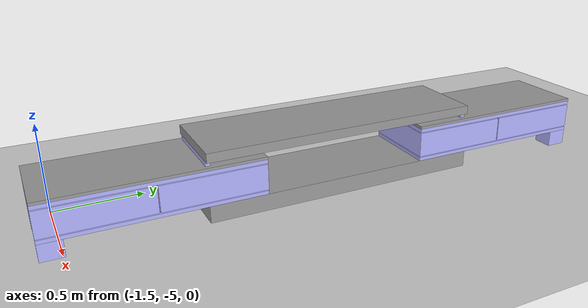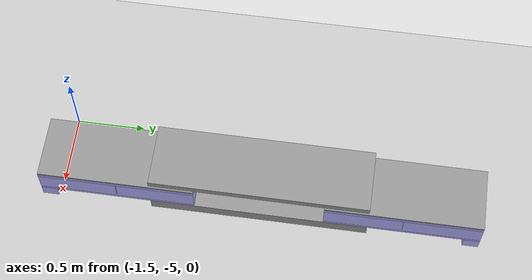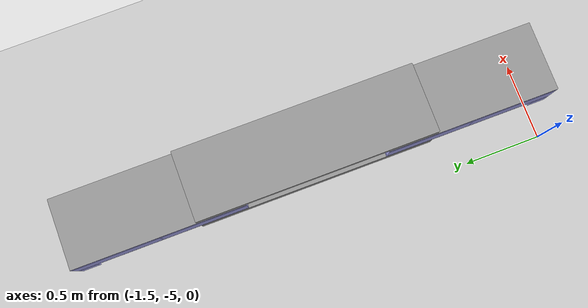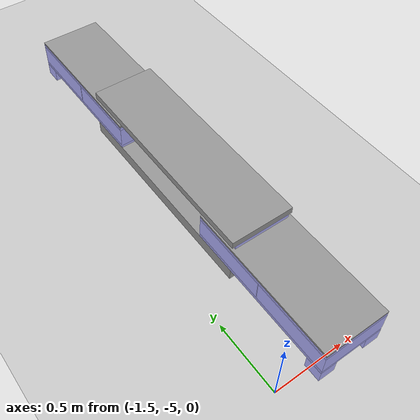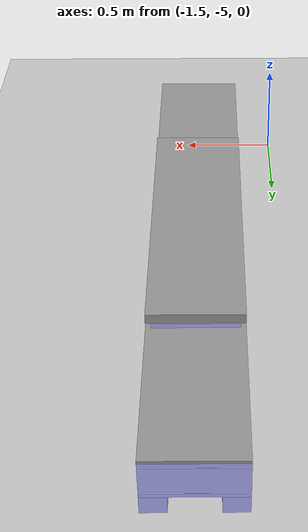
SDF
<sdf version="1.6">
 <world name="default">
  <model name="ground_plane">
   <static>1</static>
   <link name="link">
    <collision name="collision">
     <geometry><plane><normal>0 0 1</normal><size>100 100</size></plane></geometry>
     <surface><friction><ode><mu>100</mu><mu2>50</mu2></ode></friction></surface>
    </collision>
    <visual name="visual">
     <cast_shadows>0</cast_shadows>
     <geometry><plane><normal>0 0 1</normal><size>100 100</size></plane></geometry>
     <material>
      <script><uri>file://media/materials/scripts/gazebo.material</uri><name>Gazebo/Grey</name></script>
     </material>
    </visual>
   </link>
  </model>
  <model name="TVtable_1">
   <link name="link_0">
    <pose>0 0 -0.116 0 -0 0</pose>
    <visual name="visual">
     <geometry><box><size>1.545 0.45 0.091</size></box></geometry>
     <material>
      <lighting>1</lighting>
      <script><uri>file://media/materials/scripts/gazebo.material</uri><name>Gazebo/Grey</name></script>
      <ambient>0.3 0.3 0.3 1</ambient>
      <diffuse>0.7 0.7 0.7 1</diffuse>
      <specular>0.01 0.61 0.01 1</specular>
      <emissive>0 0 0 1</emissive>
      <shader type="vertex"><normal_map>__default__</normal_map></shader>
     </material>
    </visual>
    <collision name="collision">
     <geometry><box><size>1.545 0.45 0.091</size></box></geometry>
     <surface>
      <friction>
       <ode><mu>1</mu><mu2>1</mu2><fdir1>0 0 0</fdir1><slip1>0</slip1><slip2>0</slip2></ode>
       <torsional>
        <coefficient>1</coefficient>
        <patch_radius>0</patch_radius>
        <surface_radius>0</surface_radius>
        <use_patch_radius>1</use_patch_radius>
        <ode><slip>0</slip></ode>
       </torsional>
      </friction>
      <bounce><restitution_coefficient>0</restitution_coefficient><threshold>1e+06</threshold></bounce>
      <contact>
       <collide_without_contact>0</collide_without_contact>
       <collide_without_contact_bitmask>1</collide_without_contact_bitmask>
       <collide_bitmask>1</collide_bitmask>
       <ode>
        <soft_cfm>0</soft_cfm>
        <soft_erp>0.2</soft_erp>
        <kp>1e+13</kp>
        <kd>1</kd>
        <max_vel>0.01</max_vel>
        <min_depth>0</min_depth>
       </ode>
       <bullet>
        <split_impulse>1</split_impulse>
        <split_impulse_penetration_threshold>-0.01</split_impulse_penetration_threshold>
        <soft_cfm>0</soft_cfm>
        <soft_erp>0.2</soft_erp>
        <kp>1e+13</kp>
        <kd>1</kd>
       </bullet>
      </contact>
     </surface>
    </collision>
    <inertial>
     <inertia><ixx>1</ixx><ixy>0</ixy><ixz>0</ixz><iyy>1</iyy><iyz>0</iyz><izz>1</izz></inertia>
     <mass>1</mass>
    </inertial>
   </link>
   <link name="link_1_0">
    <pose>0.76 0 0.147 0 -0 0</pose>
    <visual name="visual">
     <geometry><box><size>0.025 0.4 0.025</size></box></geometry>
     <material>
      <lighting>1</lighting>
      <script><uri>file://media/materials/scripts/gazebo.material</uri><name>Gazebo/Grey</name></script>
      <ambient>0.3 0.3 0.3 1</ambient>
      <diffuse>0.7 0.7 1 1</diffuse>
      <specular>0.01 0.01 0.01 1</specular>
      <emissive>0 0 0 1</emissive>
      <shader type="vertex"><normal_map>__default__</normal_map></shader>
     </material>
    </visual>
    <collision name="collision">
     <geometry><box><size>0.025 0.4 0.025</size></box></geometry>
     <surface>
      <friction>
       <ode><mu>1</mu><mu2>1</mu2><fdir1>0 0 0</fdir1><slip1>0</slip1><slip2>0</slip2></ode>
       <torsional>
        <coefficient>1</coefficient>
        <patch_radius>0</patch_radius>
        <surface_radius>0</surface_radius>
        <use_patch_radius>1</use_patch_radius>
        <ode><slip>0</slip></ode>
       </torsional>
      </friction>
      <bounce><restitution_coefficient>0</restitution_coefficient><threshold>1e+06</threshold></bounce>
      <contact>
       <collide_without_contact>0</collide_without_contact>
       <collide_without_contact_bitmask>1</collide_without_contact_bitmask>
       <collide_bitmask>1</collide_bitmask>
       <ode>
        <soft_cfm>0</soft_cfm>
        <soft_erp>0.2</soft_erp>
        <kp>1e+13</kp>
        <kd>1</kd>
        <max_vel>0.01</max_vel>
        <min_depth>0</min_depth>
       </ode>
       <bullet>
        <split_impulse>1</split_impulse>
        <split_impulse_penetration_threshold>-0.01</split_impulse_penetration_threshold>
        <soft_cfm>0</soft_cfm>
        <soft_erp>0.2</soft_erp>
        <kp>1e+13</kp>
        <kd>1</kd>
       </bullet>
      </contact>
     </surface>
    </collision>
    <inertial>
     <inertia><ixx>1</ixx><ixy>0</ixy><ixz>0</ixz><iyy>1</iyy><iyz>0</iyz><izz>1</izz></inertia>
     <mass>1</mass>
    </inertial>
   </link>
   <link name="link_1_0_clone">
    <pose>-0.76 0 0.147 0 -0 0</pose>
    <visual name="visual_0">
     <geometry><box><size>0.025 0.4 0.025</size></box></geometry>
     <material>
      <lighting>1</lighting>
      <script><uri>file://media/materials/scripts/gazebo.material</uri><name>Gazebo/Grey</name></script>
      <ambient>0.3 0.3 0.3 1</ambient>
      <diffuse>0.7 0.7 1 1</diffuse>
      <specular>0.01 0.01 0.01 1</specular>
      <emissive>0 0 0 1</emissive>
      <shader type="vertex"><normal_map>__default__</normal_map></shader>
     </material>
    </visual>
    <collision name="collision">
     <geometry><box><size>0.025 0.4 0.025</size></box></geometry>
     <surface>
      <friction>
       <ode><mu>1</mu><mu2>1</mu2><fdir1>0 0 0</fdir1><slip1>0</slip1><slip2>0</slip2></ode>
       <torsional>
        <coefficient>1</coefficient>
        <patch_radius>0</patch_radius>
        <surface_radius>0</surface_radius>
        <use_patch_radius>1</use_patch_radius>
        <ode><slip>0</slip></ode>
       </torsional>
      </friction>
      <bounce><restitution_coefficient>0</restitution_coefficient><threshold>1e+06</threshold></bounce>
      <contact>
       <collide_without_contact>0</collide_without_contact>
       <collide_without_contact_bitmask>1</collide_without_contact_bitmask>
       <collide_bitmask>1</collide_bitmask>
       <ode>
        <soft_cfm>0</soft_cfm>
        <soft_erp>0.2</soft_erp>
        <kp>1e+13</kp>
        <kd>1</kd>
        <max_vel>0.01</max_vel>
        <min_depth>0</min_depth>
       </ode>
       <bullet>
        <split_impulse>1</split_impulse>
        <split_impulse_penetration_threshold>-0.01</split_impulse_penetration_threshold>
        <soft_cfm>0</soft_cfm>
        <soft_erp>0.2</soft_erp>
        <kp>1e+13</kp>
        <kd>1</kd>
       </bullet>
      </contact>
     </surface>
    </collision>
    <inertial>
     <inertia><ixx>1</ixx><ixy>0</ixy><ixz>0</ixz><iyy>1</iyy><iyz>0</iyz><izz>1</izz></inertia>
     <mass>1</mass>
    </inertial>
   </link>
   <link name="link_2">
    <pose>-1.0125 0 -0.0605 0 -0 0</pose>
    <visual name="visual">
     <geometry><box><size>1.105 0.45 0.02</size></box></geometry>
     <material>
      <lighting>1</lighting>
      <script><uri>file://media/materials/scripts/gazebo.material</uri><name>Gazebo/Grey</name></script>
      <ambient>0.3 0.3 0.3 1</ambient>
      <diffuse>0.7 0.7 1 1</diffuse>
      <specular>0.01 0.01 0.01 1</specular>
      <emissive>0 0 0 1</emissive>
      <shader type="vertex"><normal_map>__default__</normal_map></shader>
     </material>
    </visual>
    <collision name="collision">
     <geometry><box><size>1.105 0.45 0.02</size></box></geometry>
     <surface>
      <friction>
       <ode><mu>1</mu><mu2>1</mu2><fdir1>0 0 0</fdir1><slip1>0</slip1><slip2>0</slip2></ode>
       <torsional>
        <coefficient>1</coefficient>
        <patch_radius>0</patch_radius>
        <surface_radius>0</surface_radius>
        <use_patch_radius>1</use_patch_radius>
        <ode><slip>0</slip></ode>
       </torsional>
      </friction>
      <bounce><restitution_coefficient>0</restitution_coefficient><threshold>1e+06</threshold></bounce>
      <contact>
       <collide_without_contact>0</collide_without_contact>
       <collide_without_contact_bitmask>1</collide_without_contact_bitmask>
       <collide_bitmask>1</collide_bitmask>
       <ode>
        <soft_cfm>0</soft_cfm>
        <soft_erp>0.2</soft_erp>
        <kp>1e+13</kp>
        <kd>1</kd>
        <max_vel>0.01</max_vel>
        <min_depth>0</min_depth>
       </ode>
       <bullet>
        <split_impulse>1</split_impulse>
        <split_impulse_penetration_threshold>-0.01</split_impulse_penetration_threshold>
        <soft_cfm>0</soft_cfm>
        <soft_erp>0.2</soft_erp>
        <kp>1e+13</kp>
        <kd>1</kd>
       </bullet>
      </contact>
     </surface>
    </collision>
    <inertial>
     <inertia><ixx>1</ixx><ixy>0</ixy><ixz>0</ixz><iyy>1</iyy><iyz>0</iyz><izz>1</izz></inertia>
     <mass>1</mass>
    </inertial>
   </link>
   <link name="link_2_0">
    <pose>0 0 0.1845 0 -0 0</pose>
    <visual name="visual">
     <geometry><box><size>1.545 0.45 0.05</size></box></geometry>
     <material>
      <lighting>1</lighting>
      <script><uri>file://media/materials/scripts/gazebo.material</uri><name>Gazebo/Grey</name></script>
      <ambient>0.3 0.3 0.3 1</ambient>
      <diffuse>0.7 0.7 0.7 1</diffuse>
      <specular>0.01 0.61 0.01 1</specular>
      <emissive>0 0 0 1</emissive>
      <shader type="vertex"><normal_map>__default__</normal_map></shader>
     </material>
    </visual>
    <collision name="collision">
     <geometry><box><size>1.545 0.45 0.05</size></box></geometry>
     <surface>
      <friction>
       <ode><mu>1</mu><mu2>1</mu2><fdir1>0 0 0</fdir1><slip1>0</slip1><slip2>0</slip2></ode>
       <torsional>
        <coefficient>1</coefficient>
        <patch_radius>0</patch_radius>
        <surface_radius>0</surface_radius>
        <use_patch_radius>1</use_patch_radius>
        <ode><slip>0</slip></ode>
       </torsional>
      </friction>
      <bounce><restitution_coefficient>0</restitution_coefficient><threshold>1e+06</threshold></bounce>
      <contact>
       <collide_without_contact>0</collide_without_contact>
       <collide_without_contact_bitmask>1</collide_without_contact_bitmask>
       <collide_bitmask>1</collide_bitmask>
       <ode>
        <soft_cfm>0</soft_cfm>
        <soft_erp>0.2</soft_erp>
        <kp>1e+13</kp>
        <kd>1</kd>
        <max_vel>0.01</max_vel>
        <min_depth>0</min_depth>
       </ode>
       <bullet>
        <split_impulse>1</split_impulse>
        <split_impulse_penetration_threshold>-0.01</split_impulse_penetration_threshold>
        <soft_cfm>0</soft_cfm>
        <soft_erp>0.2</soft_erp>
        <kp>1e+13</kp>
        <kd>1</kd>
       </bullet>
      </contact>
     </surface>
    </collision>
    <inertial>
     <inertia><ixx>1</ixx><ixy>0</ixy><ixz>0</ixz><iyy>1</iyy><iyz>0</iyz><izz>1</izz></inertia>
     <mass>1</mass>
    </inertial>
   </link>
   <link name="link_2_clone">
    <pose>1.0125 0 -0.0605 0 -0 0</pose>
    <visual name="visual">
     <geometry><box><size>1.105 0.45 0.02</size></box></geometry>
     <material>
      <lighting>1</lighting>
      <script><uri>file://media/materials/scripts/gazebo.material</uri><name>Gazebo/Grey</name></script>
      <ambient>0.3 0.3 0.3 1</ambient>
      <diffuse>0.7 0.7 1 1</diffuse>
      <specular>0.01 0.01 0.01 1</specular>
      <emissive>0 0 0 1</emissive>
      <shader type="vertex"><normal_map>__default__</normal_map></shader>
     </material>
    </visual>
    <collision name="collision">
     <geometry><box><size>1.105 0.45 0.02</size></box></geometry>
     <surface>
      <friction>
       <ode><mu>1</mu><mu2>1</mu2><fdir1>0 0 0</fdir1><slip1>0</slip1><slip2>0</slip2></ode>
       <torsional>
        <coefficient>1</coefficient>
        <patch_radius>0</patch_radius>
        <surface_radius>0</surface_radius>
        <use_patch_radius>1</use_patch_radius>
        <ode><slip>0</slip></ode>
       </torsional>
      </friction>
      <bounce><restitution_coefficient>0</restitution_coefficient><threshold>1e+06</threshold></bounce>
      <contact>
       <collide_without_contact>0</collide_without_contact>
       <collide_without_contact_bitmask>1</collide_without_contact_bitmask>
       <collide_bitmask>1</collide_bitmask>
       <ode>
        <soft_cfm>0</soft_cfm>
        <soft_erp>0.2</soft_erp>
        <kp>1e+13</kp>
        <kd>1</kd>
        <max_vel>0.01</max_vel>
        <min_depth>0</min_depth>
       </ode>
       <bullet>
        <split_impulse>1</split_impulse>
        <split_impulse_penetration_threshold>-0.01</split_impulse_penetration_threshold>
        <soft_cfm>0</soft_cfm>
        <soft_erp>0.2</soft_erp>
        <kp>1e+13</kp>
        <kd>1</kd>
       </bullet>
      </contact>
     </surface>
    </collision>
    <inertial>
     <inertia><ixx>1</ixx><ixy>0</ixy><ixz>0</ixz><iyy>1</iyy><iyz>0</iyz><izz>1</izz></inertia>
     <mass>1</mass>
    </inertial>
   </link>
   <link name="link_5">
    <pose>-1.29 0 0.0245 0 -0 0</pose>
    <visual name="visual">
     <geometry><box><size>0.55 0.45 0.14</size></box></geometry>
     <material>
      <lighting>1</lighting>
      <script><uri>file://media/materials/scripts/gazebo.material</uri><name>Gazebo/Grey</name></script>
      <ambient>0.3 0.3 0.3 1</ambient>
      <diffuse>0.7 0.7 1 1</diffuse>
      <specular>0.01 0.01 0.01 1</specular>
      <emissive>0 0 0 1</emissive>
      <shader type="vertex"><normal_map>__default__</normal_map></shader>
     </material>
    </visual>
    <collision name="collision">
     <geometry><box><size>0.55 0.45 0.14</size></box></geometry>
     <surface>
      <friction>
       <ode><mu>1</mu><mu2>1</mu2><fdir1>0 0 0</fdir1><slip1>0</slip1><slip2>0</slip2></ode>
       <torsional>
        <coefficient>1</coefficient>
        <patch_radius>0</patch_radius>
        <surface_radius>0</surface_radius>
        <use_patch_radius>1</use_patch_radius>
        <ode><slip>0</slip></ode>
       </torsional>
      </friction>
      <bounce><restitution_coefficient>0</restitution_coefficient><threshold>1e+06</threshold></bounce>
      <contact>
       <collide_without_contact>0</collide_without_contact>
       <collide_without_contact_bitmask>1</collide_without_contact_bitmask>
       <collide_bitmask>1</collide_bitmask>
       <ode>
        <soft_cfm>0</soft_cfm>
        <soft_erp>0.2</soft_erp>
        <kp>1e+13</kp>
        <kd>1</kd>
        <max_vel>0.01</max_vel>
        <min_depth>0</min_depth>
       </ode>
       <bullet>
        <split_impulse>1</split_impulse>
        <split_impulse_penetration_threshold>-0.01</split_impulse_penetration_threshold>
        <soft_cfm>0</soft_cfm>
        <soft_erp>0.2</soft_erp>
        <kp>1e+13</kp>
        <kd>1</kd>
       </bullet>
      </contact>
     </surface>
    </collision>
    <inertial>
     <inertia><ixx>1</ixx><ixy>0</ixy><ixz>0</ixz><iyy>1</iyy><iyz>0</iyz><izz>1</izz></inertia>
     <mass>1</mass>
    </inertial>
   </link>
   <link name="link_5_clone">
    <pose>-0.735 0 0.0245 0 -0 0</pose>
    <visual name="visual">
     <geometry><box><size>0.55 0.45 0.14</size></box></geometry>
     <material>
      <lighting>1</lighting>
      <script><uri>file://media/materials/scripts/gazebo.material</uri><name>Gazebo/Grey</name></script>
      <ambient>0.3 0.3 0.3 1</ambient>
      <diffuse>0.7 0.7 1 1</diffuse>
      <specular>0.01 0.01 0.01 1</specular>
      <emissive>0 0 0 1</emissive>
      <shader type="vertex"><normal_map>__default__</normal_map></shader>
     </material>
    </visual>
    <collision name="collision">
     <geometry><box><size>0.55 0.45 0.14</size></box></geometry>
     <surface>
      <friction>
       <ode><mu>1</mu><mu2>1</mu2><fdir1>0 0 0</fdir1><slip1>0</slip1><slip2>0</slip2></ode>
       <torsional>
        <coefficient>1</coefficient>
        <patch_radius>0</patch_radius>
        <surface_radius>0</surface_radius>
        <use_patch_radius>1</use_patch_radius>
        <ode><slip>0</slip></ode>
       </torsional>
      </friction>
      <bounce><restitution_coefficient>0</restitution_coefficient><threshold>1e+06</threshold></bounce>
      <contact>
       <collide_without_contact>0</collide_without_contact>
       <collide_without_contact_bitmask>1</collide_without_contact_bitmask>
       <collide_bitmask>1</collide_bitmask>
       <ode>
        <soft_cfm>0</soft_cfm>
        <soft_erp>0.2</soft_erp>
        <kp>1e+13</kp>
        <kd>1</kd>
        <max_vel>0.01</max_vel>
        <min_depth>0</min_depth>
       </ode>
       <bullet>
        <split_impulse>1</split_impulse>
        <split_impulse_penetration_threshold>-0.01</split_impulse_penetration_threshold>
        <soft_cfm>0</soft_cfm>
        <soft_erp>0.2</soft_erp>
        <kp>1e+13</kp>
        <kd>1</kd>
       </bullet>
      </contact>
     </surface>
    </collision>
    <inertial>
     <inertia><ixx>1</ixx><ixy>0</ixy><ixz>0</ixz><iyy>1</iyy><iyz>0</iyz><izz>1</izz></inertia>
     <mass>1</mass>
    </inertial>
   </link>
   <link name="link_5_clone_1">
    <pose>0.735 0 0.0245 0 -0 0</pose>
    <visual name="visual">
     <geometry><box><size>0.55 0.45 0.14</size></box></geometry>
     <material>
      <lighting>1</lighting>
      <script><uri>file://media/materials/scripts/gazebo.material</uri><name>Gazebo/Grey</name></script>
      <ambient>0.3 0.3 0.3 1</ambient>
      <diffuse>0.7 0.7 1 1</diffuse>
      <specular>0.01 0.01 0.01 1</specular>
      <emissive>0 0 0 1</emissive>
      <shader type="vertex"><normal_map>__default__</normal_map></shader>
     </material>
    </visual>
    <collision name="collision">
     <geometry><box><size>0.55 0.45 0.14</size></box></geometry>
     <surface>
      <friction>
       <ode><mu>1</mu><mu2>1</mu2><fdir1>0 0 0</fdir1><slip1>0</slip1><slip2>0</slip2></ode>
       <torsional>
        <coefficient>1</coefficient>
        <patch_radius>0</patch_radius>
        <surface_radius>0</surface_radius>
        <use_patch_radius>1</use_patch_radius>
        <ode><slip>0</slip></ode>
       </torsional>
      </friction>
      <bounce><restitution_coefficient>0</restitution_coefficient><threshold>1e+06</threshold></bounce>
      <contact>
       <collide_without_contact>0</collide_without_contact>
       <collide_without_contact_bitmask>1</collide_without_contact_bitmask>
       <collide_bitmask>1</collide_bitmask>
       <ode>
        <soft_cfm>0</soft_cfm>
        <soft_erp>0.2</soft_erp>
        <kp>1e+13</kp>
        <kd>1</kd>
        <max_vel>0.01</max_vel>
        <min_depth>0</min_depth>
       </ode>
       <bullet>
        <split_impulse>1</split_impulse>
        <split_impulse_penetration_threshold>-0.01</split_impulse_penetration_threshold>
        <soft_cfm>0</soft_cfm>
        <soft_erp>0.2</soft_erp>
        <kp>1e+13</kp>
        <kd>1</kd>
       </bullet>
      </contact>
     </surface>
    </collision>
    <inertial>
     <inertia><ixx>1</ixx><ixy>0</ixy><ixz>0</ixz><iyy>1</iyy><iyz>0</iyz><izz>1</izz></inertia>
     <mass>1</mass>
    </inertial>
   </link>
   <link name="link_5_clone_2">
    <pose>1.29 0 0.0245 0 -0 0</pose>
    <visual name="visual">
     <geometry><box><size>0.55 0.45 0.14</size></box></geometry>
     <material>
      <lighting>1</lighting>
      <script><uri>file://media/materials/scripts/gazebo.material</uri><name>Gazebo/Grey</name></script>
      <ambient>0.3 0.3 0.3 1</ambient>
      <diffuse>0.7 0.7 1 1</diffuse>
      <specular>0.01 0.01 0.01 1</specular>
      <emissive>0 0 0 1</emissive>
      <shader type="vertex"><normal_map>__default__</normal_map></shader>
     </material>
    </visual>
    <collision name="collision">
     <geometry><box><size>0.55 0.45 0.14</size></box></geometry>
     <surface>
      <friction>
       <ode><mu>1</mu><mu2>1</mu2><fdir1>0 0 0</fdir1><slip1>0</slip1><slip2>0</slip2></ode>
       <torsional>
        <coefficient>1</coefficient>
        <patch_radius>0</patch_radius>
        <surface_radius>0</surface_radius>
        <use_patch_radius>1</use_patch_radius>
        <ode><slip>0</slip></ode>
       </torsional>
      </friction>
      <bounce><restitution_coefficient>0</restitution_coefficient><threshold>1e+06</threshold></bounce>
      <contact>
       <collide_without_contact>0</collide_without_contact>
       <collide_without_contact_bitmask>1</collide_without_contact_bitmask>
       <collide_bitmask>1</collide_bitmask>
       <ode>
        <soft_cfm>0</soft_cfm>
        <soft_erp>0.2</soft_erp>
        <kp>1e+13</kp>
        <kd>1</kd>
        <max_vel>0.01</max_vel>
        <min_depth>0</min_depth>
       </ode>
       <bullet>
        <split_impulse>1</split_impulse>
        <split_impulse_penetration_threshold>-0.01</split_impulse_penetration_threshold>
        <soft_cfm>0</soft_cfm>
        <soft_erp>0.2</soft_erp>
        <kp>1e+13</kp>
        <kd>1</kd>
       </bullet>
      </contact>
     </surface>
    </collision>
    <inertial>
     <inertia><ixx>1</ixx><ixy>0</ixy><ixz>0</ixz><iyy>1</iyy><iyz>0</iyz><izz>1</izz></inertia>
     <mass>1</mass>
    </inertial>
   </link>
   <link name="link_6">
    <pose>-1.0125 0 0.1095 0 -0 0</pose>
    <visual name="visual">
     <geometry><box><size>1.105 0.45 0.02</size></box></geometry>
     <material>
      <lighting>1</lighting>
      <script><uri>file://media/materials/scripts/gazebo.material</uri><name>Gazebo/Grey</name></script>
      <ambient>0.3 0.3 0.3 1</ambient>
      <diffuse>0.7 0.7 1 1</diffuse>
      <specular>0.01 0.01 0.01 1</specular>
      <emissive>0 0 0 1</emissive>
      <shader type="vertex"><normal_map>__default__</normal_map></shader>
     </material>
    </visual>
    <collision name="collision">
     <geometry><box><size>1.105 0.45 0.02</size></box></geometry>
     <surface>
      <friction>
       <ode><mu>1</mu><mu2>1</mu2><fdir1>0 0 0</fdir1><slip1>0</slip1><slip2>0</slip2></ode>
       <torsional>
        <coefficient>1</coefficient>
        <patch_radius>0</patch_radius>
        <surface_radius>0</surface_radius>
        <use_patch_radius>1</use_patch_radius>
        <ode><slip>0</slip></ode>
       </torsional>
      </friction>
      <bounce><restitution_coefficient>0</restitution_coefficient><threshold>1e+06</threshold></bounce>
      <contact>
       <collide_without_contact>0</collide_without_contact>
       <collide_without_contact_bitmask>1</collide_without_contact_bitmask>
       <collide_bitmask>1</collide_bitmask>
       <ode>
        <soft_cfm>0</soft_cfm>
        <soft_erp>0.2</soft_erp>
        <kp>1e+13</kp>
        <kd>1</kd>
        <max_vel>0.01</max_vel>
        <min_depth>0</min_depth>
       </ode>
       <bullet>
        <split_impulse>1</split_impulse>
        <split_impulse_penetration_threshold>-0.01</split_impulse_penetration_threshold>
        <soft_cfm>0</soft_cfm>
        <soft_erp>0.2</soft_erp>
        <kp>1e+13</kp>
        <kd>1</kd>
       </bullet>
      </contact>
     </surface>
    </collision>
    <inertial>
     <inertia><ixx>1</ixx><ixy>0</ixy><ixz>0</ixz><iyy>1</iyy><iyz>0</iyz><izz>1</izz></inertia>
     <mass>1</mass>
    </inertial>
   </link>
   <link name="link_6_clone">
    <pose>1.0125 0 0.1095 0 -0 0</pose>
    <visual name="visual">
     <geometry><box><size>1.105 0.45 0.02</size></box></geometry>
     <material>
      <lighting>1</lighting>
      <script><uri>file://media/materials/scripts/gazebo.material</uri><name>Gazebo/Grey</name></script>
      <ambient>0.3 0.3 0.3 1</ambient>
      <diffuse>0.7 0.7 1 1</diffuse>
      <specular>0.01 0.01 0.01 1</specular>
      <emissive>0 0 0 1</emissive>
      <shader type="vertex"><normal_map>__default__</normal_map></shader>
     </material>
    </visual>
    <collision name="collision">
     <geometry><box><size>1.105 0.45 0.02</size></box></geometry>
     <surface>
      <friction>
       <ode><mu>1</mu><mu2>1</mu2><fdir1>0 0 0</fdir1><slip1>0</slip1><slip2>0</slip2></ode>
       <torsional>
        <coefficient>1</coefficient>
        <patch_radius>0</patch_radius>
        <surface_radius>0</surface_radius>
        <use_patch_radius>1</use_patch_radius>
        <ode><slip>0</slip></ode>
       </torsional>
      </friction>
      <bounce><restitution_coefficient>0</restitution_coefficient><threshold>1e+06</threshold></bounce>
      <contact>
       <collide_without_contact>0</collide_without_contact>
       <collide_without_contact_bitmask>1</collide_without_contact_bitmask>
       <collide_bitmask>1</collide_bitmask>
       <ode>
        <soft_cfm>0</soft_cfm>
        <soft_erp>0.2</soft_erp>
        <kp>1e+13</kp>
        <kd>1</kd>
        <max_vel>0.01</max_vel>
        <min_depth>0</min_depth>
       </ode>
       <bullet>
        <split_impulse>1</split_impulse>
        <split_impulse_penetration_threshold>-0.01</split_impulse_penetration_threshold>
        <soft_cfm>0</soft_cfm>
        <soft_erp>0.2</soft_erp>
        <kp>1e+13</kp>
        <kd>1</kd>
       </bullet>
      </contact>
     </surface>
    </collision>
    <inertial>
     <inertia><ixx>1</ixx><ixy>0</ixy><ixz>0</ixz><iyy>1</iyy><iyz>0</iyz><izz>1</izz></inertia>
     <mass>1</mass>
    </inertial>
   </link>
   <link name="link_7">
    <pose>1.0125 0 0.127 0 -0 0</pose>
    <visual name="visual">
     <geometry><box><size>1.105 0.45 0.015</size></box></geometry>
     <material>
      <lighting>1</lighting>
      <script><uri>file://media/materials/scripts/gazebo.material</uri><name>Gazebo/Grey</name></script>
      <ambient>0.3 0.3 0.3 1</ambient>
      <diffuse>0.7 0.7 0.7 1</diffuse>
      <specular>0.01 0.61 0.01 1</specular>
      <emissive>0 0 0 1</emissive>
      <shader type="vertex"><normal_map>__default__</normal_map></shader>
     </material>
    </visual>
    <collision name="collision">
     <geometry><box><size>1.105 0.45 0.015</size></box></geometry>
     <surface>
      <friction>
       <ode><mu>1</mu><mu2>1</mu2><fdir1>0 0 0</fdir1><slip1>0</slip1><slip2>0</slip2></ode>
       <torsional>
        <coefficient>1</coefficient>
        <patch_radius>0</patch_radius>
        <surface_radius>0</surface_radius>
        <use_patch_radius>1</use_patch_radius>
        <ode><slip>0</slip></ode>
       </torsional>
      </friction>
      <bounce><restitution_coefficient>0</restitution_coefficient><threshold>1e+06</threshold></bounce>
      <contact>
       <collide_without_contact>0</collide_without_contact>
       <collide_without_contact_bitmask>1</collide_without_contact_bitmask>
       <collide_bitmask>1</collide_bitmask>
       <ode>
        <soft_cfm>0</soft_cfm>
        <soft_erp>0.2</soft_erp>
        <kp>1e+13</kp>
        <kd>1</kd>
        <max_vel>0.01</max_vel>
        <min_depth>0</min_depth>
       </ode>
       <bullet>
        <split_impulse>1</split_impulse>
        <split_impulse_penetration_threshold>-0.01</split_impulse_penetration_threshold>
        <soft_cfm>0</soft_cfm>
        <soft_erp>0.2</soft_erp>
        <kp>1e+13</kp>
        <kd>1</kd>
       </bullet>
      </contact>
     </surface>
    </collision>
    <inertial>
     <inertia><ixx>1</ixx><ixy>0</ixy><ixz>0</ixz><iyy>1</iyy><iyz>0</iyz><izz>1</izz></inertia>
     <mass>1</mass>
    </inertial>
   </link>
   <link name="link_7_clone">
    <pose>-1.0125 0 0.127 0 -0 0</pose>
    <visual name="visual">
     <geometry><box><size>1.105 0.45 0.015</size></box></geometry>
     <material>
      <lighting>1</lighting>
      <script><uri>file://media/materials/scripts/gazebo.material</uri><name>Gazebo/Grey</name></script>
      <ambient>0.3 0.3 0.3 1</ambient>
      <diffuse>0.7 0.7 0.7 1</diffuse>
      <specular>0.01 0.61 0.01 1</specular>
      <emissive>0 0 0 1</emissive>
      <shader type="vertex"><normal_map>__default__</normal_map></shader>
     </material>
    </visual>
    <collision name="collision">
     <geometry><box><size>1.105 0.45 0.015</size></box></geometry>
     <surface>
      <friction>
       <ode><mu>1</mu><mu2>1</mu2><fdir1>0 0 0</fdir1><slip1>0</slip1><slip2>0</slip2></ode>
       <torsional>
        <coefficient>1</coefficient>
        <patch_radius>0</patch_radius>
        <surface_radius>0</surface_radius>
        <use_patch_radius>1</use_patch_radius>
        <ode><slip>0</slip></ode>
       </torsional>
      </friction>
      <bounce><restitution_coefficient>0</restitution_coefficient><threshold>1e+06</threshold></bounce>
      <contact>
       <collide_without_contact>0</collide_without_contact>
       <collide_without_contact_bitmask>1</collide_without_contact_bitmask>
       <collide_bitmask>1</collide_bitmask>
       <ode>
        <soft_cfm>0</soft_cfm>
        <soft_erp>0.2</soft_erp>
        <kp>1e+13</kp>
        <kd>1</kd>
        <max_vel>0.01</max_vel>
        <min_depth>0</min_depth>
       </ode>
       <bullet>
        <split_impulse>1</split_impulse>
        <split_impulse_penetration_threshold>-0.01</split_impulse_penetration_threshold>
        <soft_cfm>0</soft_cfm>
        <soft_erp>0.2</soft_erp>
        <kp>1e+13</kp>
        <kd>1</kd>
       </bullet>
      </contact>
     </surface>
    </collision>
    <inertial>
     <inertia><ixx>1</ixx><ixy>0</ixy><ixz>0</ixz><iyy>1</iyy><iyz>0</iyz><izz>1</izz></inertia>
     <mass>1</mass>
    </inertial>
   </link>
   <link name="link_8">
    <pose>1.5075 0.1675 -0.116 0 -0 0</pose>
    <visual name="visual">
     <geometry><box><size>0.115 0.115 0.091</size></box></geometry>
     <material>
      <lighting>1</lighting>
      <script><uri>file://media/materials/scripts/gazebo.material</uri><name>Gazebo/Grey</name></script>
      <ambient>0.3 0.3 0.3 1</ambient>
      <diffuse>0.7 0.7 1 1</diffuse>
      <specular>0.01 0.01 0.01 1</specular>
      <emissive>0 0 0 1</emissive>
      <shader type="vertex"><normal_map>__default__</normal_map></shader>
     </material>
    </visual>
    <collision name="collision">
     <geometry><box><size>0.115 0.115 0.091</size></box></geometry>
     <surface>
      <friction>
       <ode><mu>1</mu><mu2>1</mu2><fdir1>0 0 0</fdir1><slip1>0</slip1><slip2>0</slip2></ode>
       <torsional>
        <coefficient>1</coefficient>
        <patch_radius>0</patch_radius>
        <surface_radius>0</surface_radius>
        <use_patch_radius>1</use_patch_radius>
        <ode><slip>0</slip></ode>
       </torsional>
      </friction>
      <bounce><restitution_coefficient>0</restitution_coefficient><threshold>1e+06</threshold></bounce>
      <contact>
       <collide_without_contact>0</collide_without_contact>
       <collide_without_contact_bitmask>1</collide_without_contact_bitmask>
       <collide_bitmask>1</collide_bitmask>
       <ode>
        <soft_cfm>0</soft_cfm>
        <soft_erp>0.2</soft_erp>
        <kp>1e+13</kp>
        <kd>1</kd>
        <max_vel>0.01</max_vel>
        <min_depth>0</min_depth>
       </ode>
       <bullet>
        <split_impulse>1</split_impulse>
        <split_impulse_penetration_threshold>-0.01</split_impulse_penetration_threshold>
        <soft_cfm>0</soft_cfm>
        <soft_erp>0.2</soft_erp>
        <kp>1e+13</kp>
        <kd>1</kd>
       </bullet>
      </contact>
     </surface>
    </collision>
    <inertial>
     <inertia><ixx>1</ixx><ixy>0</ixy><ixz>0</ixz><iyy>1</iyy><iyz>0</iyz><izz>1</izz></inertia>
     <mass>1</mass>
    </inertial>
   </link>
   <link name="link_8_clone">
    <pose>1.5075 -0.1675 -0.116 0 -0 0</pose>
    <visual name="visual">
     <geometry><box><size>0.115 0.115 0.091</size></box></geometry>
     <material>
      <lighting>1</lighting>
      <script><uri>file://media/materials/scripts/gazebo.material</uri><name>Gazebo/Grey</name></script>
      <ambient>0.3 0.3 0.3 1</ambient>
      <diffuse>0.7 0.7 1 1</diffuse>
      <specular>0.01 0.01 0.01 1</specular>
      <emissive>0 0 0 1</emissive>
      <shader type="vertex"><normal_map>__default__</normal_map></shader>
     </material>
    </visual>
    <collision name="collision">
     <geometry><box><size>0.115 0.115 0.091</size></box></geometry>
     <surface>
      <friction>
       <ode><mu>1</mu><mu2>1</mu2><fdir1>0 0 0</fdir1><slip1>0</slip1><slip2>0</slip2></ode>
       <torsional>
        <coefficient>1</coefficient>
        <patch_radius>0</patch_radius>
        <surface_radius>0</surface_radius>
        <use_patch_radius>1</use_patch_radius>
        <ode><slip>0</slip></ode>
       </torsional>
      </friction>
      <bounce><restitution_coefficient>0</restitution_coefficient><threshold>1e+06</threshold></bounce>
      <contact>
       <collide_without_contact>0</collide_without_contact>
       <collide_without_contact_bitmask>1</collide_without_contact_bitmask>
       <collide_bitmask>1</collide_bitmask>
       <ode>
        <soft_cfm>0</soft_cfm>
        <soft_erp>0.2</soft_erp>
        <kp>1e+13</kp>
        <kd>1</kd>
        <max_vel>0.01</max_vel>
        <min_depth>0</min_depth>
       </ode>
       <bullet>
        <split_impulse>1</split_impulse>
        <split_impulse_penetration_threshold>-0.01</split_impulse_penetration_threshold>
        <soft_cfm>0</soft_cfm>
        <soft_erp>0.2</soft_erp>
        <kp>1e+13</kp>
        <kd>1</kd>
       </bullet>
      </contact>
     </surface>
    </collision>
    <inertial>
     <inertia><ixx>1</ixx><ixy>0</ixy><ixz>0</ixz><iyy>1</iyy><iyz>0</iyz><izz>1</izz></inertia>
     <mass>1</mass>
    </inertial>
   </link>
   <link name="link_8_clone_0">
    <pose>-1.5075 0.1675 -0.116 0 -0 0</pose>
    <visual name="visual">
     <geometry><box><size>0.115 0.115 0.091</size></box></geometry>
     <material>
      <lighting>1</lighting>
      <script><uri>file://media/materials/scripts/gazebo.material</uri><name>Gazebo/Grey</name></script>
      <ambient>0.3 0.3 0.3 1</ambient>
      <diffuse>0.7 0.7 1 1</diffuse>
      <specular>0.01 0.01 0.01 1</specular>
      <emissive>0 0 0 1</emissive>
      <shader type="vertex"><normal_map>__default__</normal_map></shader>
     </material>
    </visual>
    <collision name="collision">
     <geometry><box><size>0.115 0.115 0.091</size></box></geometry>
     <surface>
      <friction>
       <ode><mu>1</mu><mu2>1</mu2><fdir1>0 0 0</fdir1><slip1>0</slip1><slip2>0</slip2></ode>
       <torsional>
        <coefficient>1</coefficient>
        <patch_radius>0</patch_radius>
        <surface_radius>0</surface_radius>
        <use_patch_radius>1</use_patch_radius>
        <ode><slip>0</slip></ode>
       </torsional>
      </friction>
      <bounce><restitution_coefficient>0</restitution_coefficient><threshold>1e+06</threshold></bounce>
      <contact>
       <collide_without_contact>0</collide_without_contact>
       <collide_without_contact_bitmask>1</collide_without_contact_bitmask>
       <collide_bitmask>1</collide_bitmask>
       <ode>
        <soft_cfm>0</soft_cfm>
        <soft_erp>0.2</soft_erp>
        <kp>1e+13</kp>
        <kd>1</kd>
        <max_vel>0.01</max_vel>
        <min_depth>0</min_depth>
       </ode>
       <bullet>
        <split_impulse>1</split_impulse>
        <split_impulse_penetration_threshold>-0.01</split_impulse_penetration_threshold>
        <soft_cfm>0</soft_cfm>
        <soft_erp>0.2</soft_erp>
        <kp>1e+13</kp>
        <kd>1</kd>
       </bullet>
      </contact>
     </surface>
    </collision>
    <inertial>
     <inertia><ixx>1</ixx><ixy>0</ixy><ixz>0</ixz><iyy>1</iyy><iyz>0</iyz><izz>1</izz></inertia>
     <mass>1</mass>
    </inertial>
   </link>
   <link name="link_8_clone_1">
    <pose>-1.5075 -0.1675 -0.116 0 -0 0</pose>
    <visual name="visual">
     <geometry><box><size>0.115 0.115 0.091</size></box></geometry>
     <material>
      <lighting>1</lighting>
      <script><uri>file://media/materials/scripts/gazebo.material</uri><name>Gazebo/Grey</name></script>
      <ambient>0.3 0.3 0.3 1</ambient>
      <diffuse>0.7 0.7 1 1</diffuse>
      <specular>0.01 0.01 0.01 1</specular>
      <emissive>0 0 0 1</emissive>
      <shader type="vertex"><normal_map>__default__</normal_map></shader>
     </material>
    </visual>
    <collision name="collision">
     <geometry><box><size>0.115 0.115 0.091</size></box></geometry>
     <surface>
      <friction>
       <ode><mu>1</mu><mu2>1</mu2><fdir1>0 0 0</fdir1><slip1>0</slip1><slip2>0</slip2></ode>
       <torsional>
        <coefficient>1</coefficient>
        <patch_radius>0</patch_radius>
        <surface_radius>0</surface_radius>
        <use_patch_radius>1</use_patch_radius>
        <ode><slip>0</slip></ode>
       </torsional>
      </friction>
      <bounce><restitution_coefficient>0</restitution_coefficient><threshold>1e+06</threshold></bounce>
      <contact>
       <collide_without_contact>0</collide_without_contact>
       <collide_without_contact_bitmask>1</collide_without_contact_bitmask>
       <collide_bitmask>1</collide_bitmask>
       <ode>
        <soft_cfm>0</soft_cfm>
        <soft_erp>0.2</soft_erp>
        <kp>1e+13</kp>
        <kd>1</kd>
        <max_vel>0.01</max_vel>
        <min_depth>0</min_depth>
       </ode>
       <bullet>
        <split_impulse>1</split_impulse>
        <split_impulse_penetration_threshold>-0.01</split_impulse_penetration_threshold>
        <soft_cfm>0</soft_cfm>
        <soft_erp>0.2</soft_erp>
        <kp>1e+13</kp>
        <kd>1</kd>
       </bullet>
      </contact>
     </surface>
    </collision>
    <inertial>
     <inertia><ixx>1</ixx><ixy>0</ixy><ixz>0</ixz><iyy>1</iyy><iyz>0</iyz><izz>1</izz></inertia>
     <mass>1</mass>
    </inertial>
   </link>
   <joint name="link_0_JOINT_10" type="fixed">
    <parent>link_0</parent>
    <child>link_2</child>
    <physics>
     <ode><limit><cfm>0</cfm><erp>0.2</erp></limit><suspension><cfm>0</cfm><erp>0.2</erp></suspension></ode>
    </physics>
   </joint>
   <joint name="link_0_JOINT_11" type="fixed">
    <parent>link_0</parent>
    <child>link_2_clone</child>
    <physics>
     <ode><limit><cfm>0</cfm><erp>0.2</erp></limit><suspension><cfm>0</cfm><erp>0.2</erp></suspension></ode>
    </physics>
   </joint>
   <joint name="link_0_JOINT_3" type="fixed">
    <parent>link_0</parent>
    <child>link_2</child>
    <physics>
     <ode><limit><cfm>0</cfm><erp>0.2</erp></limit><suspension><cfm>0</cfm><erp>0.2</erp></suspension></ode>
    </physics>
   </joint>
   <joint name="link_0_JOINT_4" type="fixed">
    <parent>link_0</parent>
    <child>link_2_clone</child>
    <physics>
     <ode><limit><cfm>0</cfm><erp>0.2</erp></limit><suspension><cfm>0</cfm><erp>0.2</erp></suspension></ode>
    </physics>
   </joint>
   <joint name="link_0_JOINT_6" type="fixed">
    <parent>link_0</parent>
    <child>link_5</child>
    <physics>
     <ode><limit><cfm>0</cfm><erp>0.2</erp></limit><suspension><cfm>0</cfm><erp>0.2</erp></suspension></ode>
    </physics>
   </joint>
   <joint name="link_0_JOINT_7" type="fixed">
    <parent>link_0</parent>
    <child>link_5_clone_1</child>
    <physics>
     <ode><limit><cfm>0</cfm><erp>0.2</erp></limit><suspension><cfm>0</cfm><erp>0.2</erp></suspension></ode>
    </physics>
   </joint>
   <joint name="link_0_JOINT_8" type="fixed">
    <parent>link_0</parent>
    <child>link_5_clone_2</child>
    <physics>
     <ode><limit><cfm>0</cfm><erp>0.2</erp></limit><suspension><cfm>0</cfm><erp>0.2</erp></suspension></ode>
    </physics>
   </joint>
   <joint name="link_0_JOINT_9" type="fixed">
    <parent>link_0</parent>
    <child>link_5_clone_1</child>
    <physics>
     <ode><limit><cfm>0</cfm><erp>0.2</erp></limit><suspension><cfm>0</cfm><erp>0.2</erp></suspension></ode>
    </physics>
   </joint>
   <joint name="link_1_0_JOINT_23" type="fixed">
    <parent>link_1_0</parent>
    <child>link_2_0</child>
    <physics>
     <ode><limit><cfm>0</cfm><erp>0.2</erp></limit><suspension><cfm>0</cfm><erp>0.2</erp></suspension></ode>
    </physics>
   </joint>
   <joint name="link_1_0_JOINT_6" type="fixed">
    <parent>link_1_0</parent>
    <child>link_7</child>
    <physics>
     <ode><limit><cfm>0</cfm><erp>0.2</erp></limit><suspension><cfm>0</cfm><erp>0.2</erp></suspension></ode>
    </physics>
   </joint>
   <joint name="link_1_0_clone_JOINT_22" type="fixed">
    <parent>link_1_0_clone</parent>
    <child>link_2_0</child>
    <physics>
     <ode><limit><cfm>0</cfm><erp>0.2</erp></limit><suspension><cfm>0</cfm><erp>0.2</erp></suspension></ode>
    </physics>
   </joint>
   <joint name="link_1_0_clone_JOINT_5" type="fixed">
    <parent>link_1_0_clone</parent>
    <child>link_7_clone</child>
    <physics>
     <ode><limit><cfm>0</cfm><erp>0.2</erp></limit><suspension><cfm>0</cfm><erp>0.2</erp></suspension></ode>
    </physics>
   </joint>
   <joint name="link_1_0_clone_JOINT_7" type="fixed">
    <parent>link_1_0_clone</parent>
    <child>link_2_0</child>
    <physics>
     <ode><limit><cfm>0</cfm><erp>0.2</erp></limit><suspension><cfm>0</cfm><erp>0.2</erp></suspension></ode>
    </physics>
   </joint>
   <joint name="link_2_0_JOINT_12" type="fixed">
    <parent>link_2_0</parent>
    <child>link_7</child>
    <physics>
     <ode><limit><cfm>0</cfm><erp>0.2</erp></limit><suspension><cfm>0</cfm><erp>0.2</erp></suspension></ode>
    </physics>
   </joint>
   <joint name="link_2_0_JOINT_13" type="fixed">
    <parent>link_2_0</parent>
    <child>link_5_clone</child>
    <physics>
     <ode><limit><cfm>0</cfm><erp>0.2</erp></limit><suspension><cfm>0</cfm><erp>0.2</erp></suspension></ode>
    </physics>
   </joint>
   <joint name="link_2_0_JOINT_8" type="fixed">
    <parent>link_2_0</parent>
    <child>link_1_0</child>
    <physics>
     <ode><limit><cfm>0</cfm><erp>0.2</erp></limit><suspension><cfm>0</cfm><erp>0.2</erp></suspension></ode>
    </physics>
   </joint>
   <joint name="link_2_0_JOINT_9" type="fixed">
    <parent>link_2_0</parent>
    <child>link_0</child>
    <physics>
     <ode><limit><cfm>0</cfm><erp>0.2</erp></limit><suspension><cfm>0</cfm><erp>0.2</erp></suspension></ode>
    </physics>
   </joint>
   <joint name="link_2_JOINT_16" type="fixed">
    <parent>link_2</parent>
    <child>link_5_clone</child>
    <physics>
     <ode><limit><cfm>0</cfm><erp>0.2</erp></limit><suspension><cfm>0</cfm><erp>0.2</erp></suspension></ode>
    </physics>
   </joint>
   <joint name="link_2_JOINT_17" type="fixed">
    <parent>link_2</parent>
    <child>link_5</child>
    <physics>
     <ode><limit><cfm>0</cfm><erp>0.2</erp></limit><suspension><cfm>0</cfm><erp>0.2</erp></suspension></ode>
    </physics>
   </joint>
   <joint name="link_2_JOINT_20" type="fixed">
    <parent>link_2</parent>
    <child>link_8_clone_1</child>
    <physics>
     <ode><limit><cfm>0</cfm><erp>0.2</erp></limit><suspension><cfm>0</cfm><erp>0.2</erp></suspension></ode>
    </physics>
   </joint>
   <joint name="link_2_JOINT_21" type="fixed">
    <parent>link_2</parent>
    <child>link_8_clone_0</child>
    <physics>
     <ode><limit><cfm>0</cfm><erp>0.2</erp></limit><suspension><cfm>0</cfm><erp>0.2</erp></suspension></ode>
    </physics>
   </joint>
   <joint name="link_2_clone_JOINT_18" type="fixed">
    <parent>link_2_clone</parent>
    <child>link_5_clone_1</child>
    <physics>
     <ode><limit><cfm>0</cfm><erp>0.2</erp></limit><suspension><cfm>0</cfm><erp>0.2</erp></suspension></ode>
    </physics>
   </joint>
   <joint name="link_2_clone_JOINT_19" type="fixed">
    <parent>link_2_clone</parent>
    <child>link_5_clone_2</child>
    <physics>
     <ode><limit><cfm>0</cfm><erp>0.2</erp></limit><suspension><cfm>0</cfm><erp>0.2</erp></suspension></ode>
    </physics>
   </joint>
   <joint name="link_2_clone_JOINT_22" type="fixed">
    <parent>link_2_clone</parent>
    <child>link_8_clone</child>
    <physics>
     <ode><limit><cfm>0</cfm><erp>0.2</erp></limit><suspension><cfm>0</cfm><erp>0.2</erp></suspension></ode>
    </physics>
   </joint>
   <joint name="link_2_clone_JOINT_23" type="fixed">
    <parent>link_2_clone</parent>
    <child>link_8</child>
    <physics>
     <ode><limit><cfm>0</cfm><erp>0.2</erp></limit><suspension><cfm>0</cfm><erp>0.2</erp></suspension></ode>
    </physics>
   </joint>
   <joint name="link_6_JOINT_0" type="fixed">
    <parent>link_6</parent>
    <child>link_7_clone</child>
    <physics>
     <ode><limit><cfm>0</cfm><erp>0.2</erp></limit><suspension><cfm>0</cfm><erp>0.2</erp></suspension></ode>
    </physics>
   </joint>
   <joint name="link_6_JOINT_18" type="fixed">
    <parent>link_6</parent>
    <child>link_7_clone</child>
    <physics>
     <ode><limit><cfm>0</cfm><erp>0.2</erp></limit><suspension><cfm>0</cfm><erp>0.2</erp></suspension></ode>
    </physics>
   </joint>
   <joint name="link_6_clone_JOINT_19" type="fixed">
    <parent>link_6_clone</parent>
    <child>link_7</child>
    <physics>
     <ode><limit><cfm>0</cfm><erp>0.2</erp></limit><suspension><cfm>0</cfm><erp>0.2</erp></suspension></ode>
    </physics>
   </joint>
   <joint name="link_7_JOINT_15" type="fixed">
    <parent>link_7</parent>
    <child>link_6_clone</child>
    <physics>
     <ode><limit><cfm>0</cfm><erp>0.2</erp></limit><suspension><cfm>0</cfm><erp>0.2</erp></suspension></ode>
    </physics>
   </joint>
   <joint name="link_7_JOINT_21" type="fixed">
    <parent>link_7</parent>
    <child>link_1_0</child>
    <physics>
     <ode><limit><cfm>0</cfm><erp>0.2</erp></limit><suspension><cfm>0</cfm><erp>0.2</erp></suspension></ode>
    </physics>
   </joint>
   <joint name="link_7_JOINT_4" type="fixed">
    <parent>link_7</parent>
    <child>link_1_0</child>
    <physics>
     <ode><limit><cfm>0</cfm><erp>0.2</erp></limit><suspension><cfm>0</cfm><erp>0.2</erp></suspension></ode>
    </physics>
   </joint>
   <joint name="link_7_clone_JOINT_14" type="fixed">
    <parent>link_7_clone</parent>
    <child>link_6</child>
    <physics>
     <ode><limit><cfm>0</cfm><erp>0.2</erp></limit><suspension><cfm>0</cfm><erp>0.2</erp></suspension></ode>
    </physics>
   </joint>
   <joint name="link_7_clone_JOINT_20" type="fixed">
    <parent>link_7_clone</parent>
    <child>link_1_0_clone</child>
    <physics>
     <ode><limit><cfm>0</cfm><erp>0.2</erp></limit><suspension><cfm>0</cfm><erp>0.2</erp></suspension></ode>
    </physics>
   </joint>
   <joint name="link_7_clone_JOINT_3" type="fixed">
    <parent>link_7_clone</parent>
    <child>link_1_0_clone</child>
    <physics>
     <ode><limit><cfm>0</cfm><erp>0.2</erp></limit><suspension><cfm>0</cfm><erp>0.2</erp></suspension></ode>
    </physics>
   </joint>
   <static>0</static>
   <pose>-1.06249 -3.54487 0.241498 0 -2e-06 1.56754</pose>
  </model>
 </world>
</sdf>
